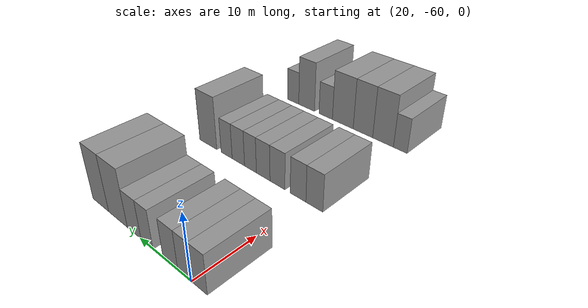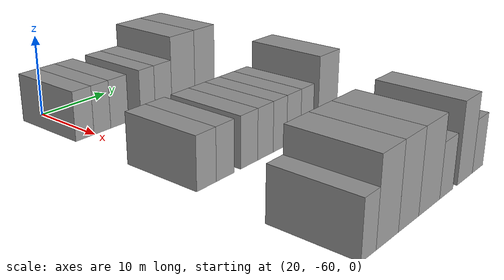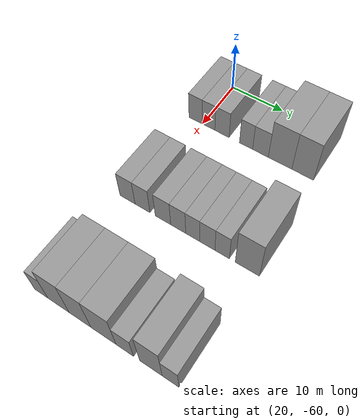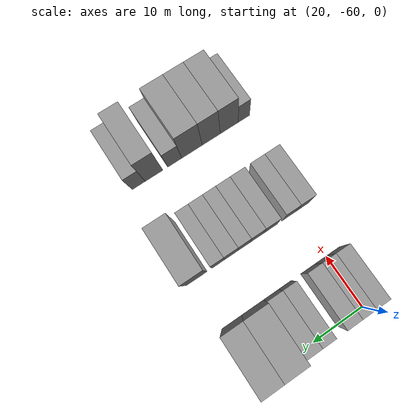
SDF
<sdf version="1.6">
 <world name="default">
  <model name="building_44">
   <static>1</static>
   <pose>25.0000 -61.4347 0 0.000000 0.000000 0.000000</pose>
   <link name="link">
    <pose>0 0 3.00 0 0 0</pose>
    <collision name="collision"><geometry><box><size>10.0000 2.6632 6.0000</size></box></geometry></collision>
    <visual name="visual">
     <cast_shadows>0</cast_shadows>
     <geometry><box><size>10.0000 2.6632 6.0000</size></box></geometry>
     <material>
      <script>
       <uri>model://grey_wall/materials/scripts</uri>
       <uri>model://grey_wall/materials/textures</uri>
       <name>vrc/grey_wall</name>
      </script>
     </material>
    </visual>
   </link>
  </model>
  <model name="building_45">
   <static>1</static>
   <pose>25.0000 -58.8214 0 0.000000 0.000000 0.000000</pose>
   <link name="link">
    <pose>0 0 3.00 0 0 0</pose>
    <collision name="collision"><geometry><box><size>10.0000 2.5635 6.0000</size></box></geometry></collision>
    <visual name="visual">
     <cast_shadows>0</cast_shadows>
     <geometry><box><size>10.0000 2.5635 6.0000</size></box></geometry>
     <material>
      <script>
       <uri>model://grey_wall/materials/scripts</uri>
       <uri>model://grey_wall/materials/textures</uri>
       <name>vrc/grey_wall</name>
      </script>
     </material>
    </visual>
   </link>
  </model>
  <model name="building_46">
   <static>1</static>
   <pose>25.0000 -56.1312 0 0.000000 0.000000 0.000000</pose>
   <link name="link">
    <pose>0 0 3.00 0 0 0</pose>
    <collision name="collision"><geometry><box><size>10.0000 2.8169 6.0000</size></box></geometry></collision>
    <visual name="visual">
     <cast_shadows>0</cast_shadows>
     <geometry><box><size>10.0000 2.8169 6.0000</size></box></geometry>
     <material>
      <script>
       <uri>model://grey_wall/materials/scripts</uri>
       <uri>model://grey_wall/materials/textures</uri>
       <name>vrc/grey_wall</name>
      </script>
     </material>
    </visual>
   </link>
  </model>
  <model name="building_47">
   <static>1</static>
   <pose>25.0000 -51.4652 0 0.000000 0.000000 0.000000</pose>
   <link name="link">
    <pose>0 0 3.00 0 0 0</pose>
    <collision name="collision"><geometry><box><size>10.0000 2.5151 6.0000</size></box></geometry></collision>
    <visual name="visual">
     <cast_shadows>0</cast_shadows>
     <geometry><box><size>10.0000 2.5151 6.0000</size></box></geometry>
     <material>
      <script>
       <uri>model://grey_wall/materials/scripts</uri>
       <uri>model://grey_wall/materials/textures</uri>
       <name>vrc/grey_wall</name>
      </script>
     </material>
    </visual>
   </link>
  </model>
  <model name="building_48">
   <static>1</static>
   <pose>25.0000 -48.7273 0 0.000000 0.000000 0.000000</pose>
   <link name="link">
    <pose>0 0 3.00 0 0 0</pose>
    <collision name="collision"><geometry><box><size>10.0000 2.9607 6.0000</size></box></geometry></collision>
    <visual name="visual">
     <cast_shadows>0</cast_shadows>
     <geometry><box><size>10.0000 2.9607 6.0000</size></box></geometry>
     <material>
      <script>
       <uri>model://grey_wall/materials/scripts</uri>
       <uri>model://grey_wall/materials/textures</uri>
       <name>vrc/grey_wall</name>
      </script>
     </material>
    </visual>
   </link>
  </model>
  <model name="building_49">
   <static>1</static>
   <pose>25.0000 -45.0810 0 0.000000 0.000000 0.000000</pose>
   <link name="link">
    <pose>0 0 4.50 0 0 0</pose>
    <collision name="collision"><geometry><box><size>10.0000 4.3319 9.0000</size></box></geometry></collision>
    <visual name="visual">
     <cast_shadows>0</cast_shadows>
     <geometry><box><size>10.0000 4.3319 9.0000</size></box></geometry>
     <material>
      <script>
       <uri>model://grey_wall/materials/scripts</uri>
       <uri>model://grey_wall/materials/textures</uri>
       <name>vrc/grey_wall</name>
      </script>
     </material>
    </visual>
   </link>
  </model>
  <model name="building_50">
   <static>1</static>
   <pose>25.0000 -40.9678 0 0.000000 0.000000 0.000000</pose>
   <link name="link">
    <pose>0 0 4.50 0 0 0</pose>
    <collision name="collision"><geometry><box><size>10.0000 3.8946 9.0000</size></box></geometry></collision>
    <visual name="visual">
     <cast_shadows>0</cast_shadows>
     <geometry><box><size>10.0000 3.8946 9.0000</size></box></geometry>
     <material>
      <script>
       <uri>model://grey_wall/materials/scripts</uri>
       <uri>model://grey_wall/materials/textures</uri>
       <name>vrc/grey_wall</name>
      </script>
     </material>
    </visual>
   </link>
  </model>
  <model name="building_166">
   <static>1</static>
   <pose>44.0000 -61.5819 0 0.000000 0.000000 0.000000</pose>
   <link name="link">
    <pose>0 0 3.00 0 0 0</pose>
    <collision name="collision"><geometry><box><size>10.0000 2.9183 6.0000</size></box></geometry></collision>
    <visual name="visual">
     <cast_shadows>0</cast_shadows>
     <geometry><box><size>10.0000 2.9183 6.0000</size></box></geometry>
     <material>
      <script>
       <uri>model://grey_wall/materials/scripts</uri>
       <uri>model://grey_wall/materials/textures</uri>
       <name>vrc/grey_wall</name>
      </script>
     </material>
    </visual>
   </link>
  </model>
  <model name="building_167">
   <static>1</static>
   <pose>44.0000 -58.7132 0 0.000000 0.000000 0.000000</pose>
   <link name="link">
    <pose>0 0 3.00 0 0 0</pose>
    <collision name="collision"><geometry><box><size>10.0000 2.8190 6.0000</size></box></geometry></collision>
    <visual name="visual">
     <cast_shadows>0</cast_shadows>
     <geometry><box><size>10.0000 2.8190 6.0000</size></box></geometry>
     <material>
      <script>
       <uri>model://grey_wall/materials/scripts</uri>
       <uri>model://grey_wall/materials/textures</uri>
       <name>vrc/grey_wall</name>
      </script>
     </material>
    </visual>
   </link>
  </model>
  <model name="building_168">
   <static>1</static>
   <pose>44.0000 -54.8727 0 0.000000 0.000000 0.000000</pose>
   <link name="link">
    <pose>0 0 3.00 0 0 0</pose>
    <collision name="collision"><geometry><box><size>10.0000 2.8621 6.0000</size></box></geometry></collision>
    <visual name="visual">
     <cast_shadows>0</cast_shadows>
     <geometry><box><size>10.0000 2.8621 6.0000</size></box></geometry>
     <material>
      <script>
       <uri>model://grey_wall/materials/scripts</uri>
       <uri>model://grey_wall/materials/textures</uri>
       <name>vrc/grey_wall</name>
      </script>
     </material>
    </visual>
   </link>
  </model>
  <model name="building_169">
   <static>1</static>
   <pose>44.0000 -52.0777 0 0.000000 0.000000 0.000000</pose>
   <link name="link">
    <pose>0 0 3.00 0 0 0</pose>
    <collision name="collision"><geometry><box><size>10.0000 2.7279 6.0000</size></box></geometry></collision>
    <visual name="visual">
     <cast_shadows>0</cast_shadows>
     <geometry><box><size>10.0000 2.7279 6.0000</size></box></geometry>
     <material>
      <script>
       <uri>model://grey_wall/materials/scripts</uri>
       <uri>model://grey_wall/materials/textures</uri>
       <name>vrc/grey_wall</name>
      </script>
     </material>
    </visual>
   </link>
  </model>
  <model name="building_170">
   <static>1</static>
   <pose>44.0000 -49.4758 0 0.000000 0.000000 0.000000</pose>
   <link name="link">
    <pose>0 0 3.00 0 0 0</pose>
    <collision name="collision"><geometry><box><size>10.0000 2.4759 6.0000</size></box></geometry></collision>
    <visual name="visual">
     <cast_shadows>0</cast_shadows>
     <geometry><box><size>10.0000 2.4759 6.0000</size></box></geometry>
     <material>
      <script>
       <uri>model://grey_wall/materials/scripts</uri>
       <uri>model://grey_wall/materials/textures</uri>
       <name>vrc/grey_wall</name>
      </script>
     </material>
    </visual>
   </link>
  </model>
  <model name="building_171">
   <static>1</static>
   <pose>44.0000 -46.8938 0 0.000000 0.000000 0.000000</pose>
   <link name="link">
    <pose>0 0 3.00 0 0 0</pose>
    <collision name="collision"><geometry><box><size>10.0000 2.6882 6.0000</size></box></geometry></collision>
    <visual name="visual">
     <cast_shadows>0</cast_shadows>
     <geometry><box><size>10.0000 2.6882 6.0000</size></box></geometry>
     <material>
      <script>
       <uri>model://grey_wall/materials/scripts</uri>
       <uri>model://grey_wall/materials/textures</uri>
       <name>vrc/grey_wall</name>
      </script>
     </material>
    </visual>
   </link>
  </model>
  <model name="building_172">
   <static>1</static>
   <pose>44.0000 -44.3092 0 0.000000 0.000000 0.000000</pose>
   <link name="link">
    <pose>0 0 3.00 0 0 0</pose>
    <collision name="collision"><geometry><box><size>10.0000 2.4809 6.0000</size></box></geometry></collision>
    <visual name="visual">
     <cast_shadows>0</cast_shadows>
     <geometry><box><size>10.0000 2.4809 6.0000</size></box></geometry>
     <material>
      <script>
       <uri>model://grey_wall/materials/scripts</uri>
       <uri>model://grey_wall/materials/textures</uri>
       <name>vrc/grey_wall</name>
      </script>
     </material>
    </visual>
   </link>
  </model>
  <model name="building_173">
   <static>1</static>
   <pose>44.0000 -40.0476 0 0.000000 0.000000 0.000000</pose>
   <link name="link">
    <pose>0 0 4.50 0 0 0</pose>
    <collision name="collision"><geometry><box><size>10.0000 4.0423 9.0000</size></box></geometry></collision>
    <visual name="visual">
     <cast_shadows>0</cast_shadows>
     <geometry><box><size>10.0000 4.0423 9.0000</size></box></geometry>
     <material>
      <script>
       <uri>model://grey_wall/materials/scripts</uri>
       <uri>model://grey_wall/materials/textures</uri>
       <name>vrc/grey_wall</name>
      </script>
     </material>
    </visual>
   </link>
  </model>
  <model name="building_287">
   <static>1</static>
   <pose>63.0000 -62.3807 0 0.000000 0.000000 0.000000</pose>
   <link name="link">
    <pose>0 0 3.00 0 0 0</pose>
    <collision name="collision"><geometry><box><size>10.0000 2.4506 6.0000</size></box></geometry></collision>
    <visual name="visual">
     <cast_shadows>0</cast_shadows>
     <geometry><box><size>10.0000 2.4506 6.0000</size></box></geometry>
     <material>
      <script>
       <uri>model://grey_wall/materials/scripts</uri>
       <uri>model://grey_wall/materials/textures</uri>
       <name>vrc/grey_wall</name>
      </script>
     </material>
    </visual>
   </link>
  </model>
  <model name="building_288">
   <static>1</static>
   <pose>63.0000 -59.2205 0 0.000000 0.000000 0.000000</pose>
   <link name="link">
    <pose>0 0 4.50 0 0 0</pose>
    <collision name="collision"><geometry><box><size>10.0000 3.8698 9.0000</size></box></geometry></collision>
    <visual name="visual">
     <cast_shadows>0</cast_shadows>
     <geometry><box><size>10.0000 3.8698 9.0000</size></box></geometry>
     <material>
      <script>
       <uri>model://grey_wall/materials/scripts</uri>
       <uri>model://grey_wall/materials/textures</uri>
       <name>vrc/grey_wall</name>
      </script>
     </material>
    </visual>
   </link>
  </model>
  <model name="building_289">
   <static>1</static>
   <pose>63.0000 -55.3718 0 0.000000 0.000000 0.000000</pose>
   <link name="link">
    <pose>0 0 4.50 0 0 0</pose>
    <collision name="collision"><geometry><box><size>10.0000 3.8275 9.0000</size></box></geometry></collision>
    <visual name="visual">
     <cast_shadows>0</cast_shadows>
     <geometry><box><size>10.0000 3.8275 9.0000</size></box></geometry>
     <material>
      <script>
       <uri>model://grey_wall/materials/scripts</uri>
       <uri>model://grey_wall/materials/textures</uri>
       <name>vrc/grey_wall</name>
      </script>
     </material>
    </visual>
   </link>
  </model>
  <model name="building_290">
   <static>1</static>
   <pose>63.0000 -51.3066 0 0.000000 0.000000 0.000000</pose>
   <link name="link">
    <pose>0 0 4.50 0 0 0</pose>
    <collision name="collision"><geometry><box><size>10.0000 4.3030 9.0000</size></box></geometry></collision>
    <visual name="visual">
     <cast_shadows>0</cast_shadows>
     <geometry><box><size>10.0000 4.3030 9.0000</size></box></geometry>
     <material>
      <script>
       <uri>model://grey_wall/materials/scripts</uri>
       <uri>model://grey_wall/materials/textures</uri>
       <name>vrc/grey_wall</name>
      </script>
     </material>
    </visual>
   </link>
  </model>
  <model name="building_291">
   <static>1</static>
   <pose>63.0000 -47.7044 0 0.000000 0.000000 0.000000</pose>
   <link name="link">
    <pose>0 0 3.00 0 0 0</pose>
    <collision name="collision"><geometry><box><size>10.0000 2.9012 6.0000</size></box></geometry></collision>
    <visual name="visual">
     <cast_shadows>0</cast_shadows>
     <geometry><box><size>10.0000 2.9012 6.0000</size></box></geometry>
     <material>
      <script>
       <uri>model://grey_wall/materials/scripts</uri>
       <uri>model://grey_wall/materials/textures</uri>
       <name>vrc/grey_wall</name>
      </script>
     </material>
    </visual>
   </link>
  </model>
  <model name="building_292">
   <static>1</static>
   <pose>63.0000 -43.4492 0 0.000000 0.000000 0.000000</pose>
   <link name="link">
    <pose>0 0 4.50 0 0 0</pose>
    <collision name="collision"><geometry><box><size>10.0000 3.6093 9.0000</size></box></geometry></collision>
    <visual name="visual">
     <cast_shadows>0</cast_shadows>
     <geometry><box><size>10.0000 3.6093 9.0000</size></box></geometry>
     <material>
      <script>
       <uri>model://grey_wall/materials/scripts</uri>
       <uri>model://grey_wall/materials/textures</uri>
       <name>vrc/grey_wall</name>
      </script>
     </material>
    </visual>
   </link>
  </model>
  <model name="building_293">
   <static>1</static>
   <pose>63.0000 -40.3307 0 0.000000 0.000000 0.000000</pose>
   <link name="link">
    <pose>0 0 3.00 0 0 0</pose>
    <collision name="collision"><geometry><box><size>10.0000 2.6278 6.0000</size></box></geometry></collision>
    <visual name="visual">
     <cast_shadows>0</cast_shadows>
     <geometry><box><size>10.0000 2.6278 6.0000</size></box></geometry>
     <material>
      <script>
       <uri>model://grey_wall/materials/scripts</uri>
       <uri>model://grey_wall/materials/textures</uri>
       <name>vrc/grey_wall</name>
      </script>
     </material>
    </visual>
   </link>
  </model>
 </world>
</sdf>
